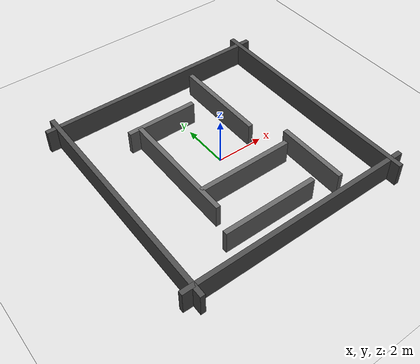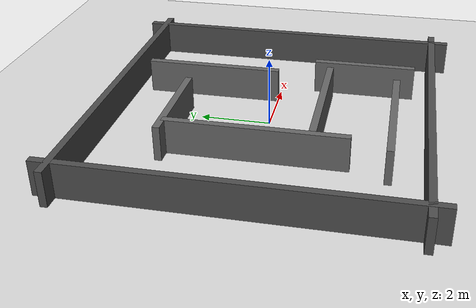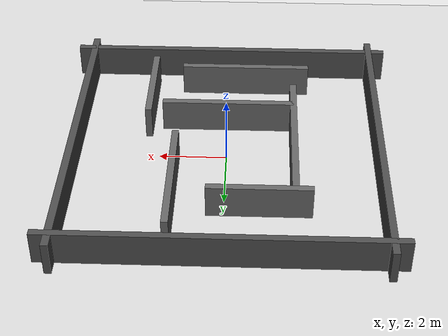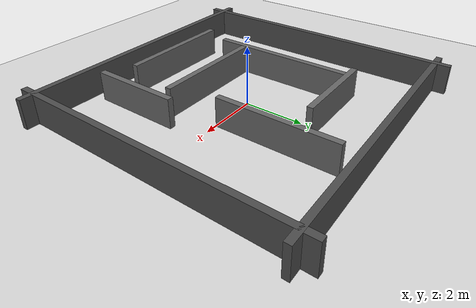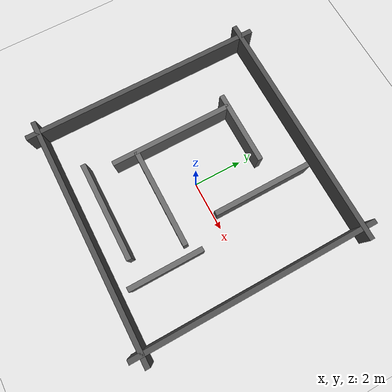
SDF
<?xml version="1.0" ?>
<sdf version="1.9">
  <world name="maze_world">
    <physics name="1ms" default="true" type="ode">
      <max_step_size>0.001</max_step_size>
      <real_time_factor>1.0</real_time_factor>
      <real_time_update_rate>1000.0</real_time_update_rate>
    </physics>

    <plugin filename="gz-sim-physics-system" name="gz::sim::systems::Physics">
    </plugin>
    <plugin filename="gz-sim-user-commands-system" name="gz::sim::systems::UserCommands">
    </plugin>
    <plugin filename="gz-sim-scene-broadcaster-system" name="gz::sim::systems::SceneBroadcaster">
    </plugin>

    <scene>
      <ambient>0.4 0.4 0.4 1.0</ambient>
      <background>0.7 0.7 0.8 1.0</background>
      <shadows>true</shadows>
    </scene>

    <light type="directional" name="sun">
      <cast_shadows>true</cast_shadows>
      <pose>0 0 10 0 0 0</pose>
      <diffuse>0.8 0.8 0.8 1</diffuse>
      <specular>0.2 0.2 0.2 1</specular>
      <direction>-0.5 0.1 -0.9</direction>
    </light>

    <model name="ground_plane">
      <static>true</static>
      <link name="link">
        <collision name="collision">
          <geometry>
            <plane>
              <normal>0 0 1</normal>
              <size>50 50</size>
            </plane>
          </geometry>
        </collision>
        <visual name="visual">
          <geometry>
            <plane>
              <normal>0 0 1</normal>
              <size>50 50</size>
            </plane>
          </geometry>
          <material>
            <ambient>0.85 0.85 0.85 1</ambient>
            <diffuse>0.85 0.85 0.85 1</diffuse>
          </material>
        </visual>
      </link>
    </model>

    <model name="maze_walls">
      <static>true</static>

      <link name="wall_outer_1">
        <pose>0 -4.5 0.5 0 0 0</pose>
        <collision name="collision"><geometry><box><size>10 0.2 1.0</size></box></geometry></collision>
        <visual name="visual"><geometry><box><size>10 0.2 1.0</size></box></geometry><material><ambient>0.3 0.3 0.3 1</ambient><diffuse>0.3 0.3 0.3 1</diffuse></material></visual>
      </link>
      <link name="wall_outer_2">
        <pose>0 4.5 0.5 0 0 0</pose>
        <collision name="collision"><geometry><box><size>10 0.2 1.0</size></box></geometry></collision>
        <visual name="visual"><geometry><box><size>10 0.2 1.0</size></box></geometry><material><ambient>0.3 0.3 0.3 1</ambient><diffuse>0.3 0.3 0.3 1</diffuse></material></visual>
      </link>
      <link name="wall_outer_3">
        <pose>-4.5 0 0.5 0 0 0</pose>
        <collision name="collision"><geometry><box><size>0.2 10 1.0</size></box></geometry></collision>
        <visual name="visual"><geometry><box><size>0.2 10 1.0</size></box></geometry><material><ambient>0.3 0.3 0.3 1</ambient><diffuse>0.3 0.3 0.3 1</diffuse></material></visual>
      </link>
      <link name="wall_outer_4">
        <pose>4.5 0 0.5 0 0 0</pose>
        <collision name="collision"><geometry><box><size>0.2 10 1.0</size></box></geometry></collision>
        <visual name="visual"><geometry><box><size>0.2 10 1.0</size></box></geometry><material><ambient>0.3 0.3 0.3 1</ambient><diffuse>0.3 0.3 0.3 1</diffuse></material></visual>
      </link>
      <link name="wall_1">
        <pose>-2.0 0.0 0.5 0 0 0</pose>
        <collision name="collision"><geometry><box><size>0.2 5.0 1.0</size></box></geometry></collision>
        <visual name="visual"><geometry><box><size>0.2 5.0 1.0</size></box></geometry><material><ambient>0.4 0.4 0.4 1</ambient><diffuse>0.4 0.4 0.4 1</diffuse></material></visual>
      </link>
      <link name="wall_2">
        <pose>0.0 -1.5 0.5 0 0 0</pose>
        <collision name="collision"><geometry><box><size>4.0 0.2 1.0</size></box></geometry></collision>
        <visual name="visual"><geometry><box><size>4.0 0.2 1.0</size></box></geometry><material><ambient>0.4 0.4 0.4 1</ambient><diffuse>0.4 0.4 0.4 1</diffuse></material></visual>
      </link>
      <link name="wall_3">
        <pose>1.5 2.0 0.5 0 0 0</pose>
        <collision name="collision"><geometry><box><size>0.2 4.0 1.0</size></box></geometry></collision>
        <visual name="visual"><geometry><box><size>0.2 4.0 1.0</size></box></geometry><material><ambient>0.4 0.4 0.4 1</ambient><diffuse>0.4 0.4 0.4 1</diffuse></material></visual>
      </link>
      <link name="wall_4">
        <pose>-1.0 2.5 0.5 0 0 0</pose>
        <collision name="collision"><geometry><box><size>3.0 0.2 1.0</size></box></geometry></collision>
        <visual name="visual"><geometry><box><size>3.0 0.2 1.0</size></box></geometry><material><ambient>0.4 0.4 0.4 1</ambient><diffuse>0.4 0.4 0.4 1</diffuse></material></visual>
      </link>
      <link name="wall_5">
        <pose>2.4 -2.5 0.5 0 0 0</pose>
        <collision name="collision"><geometry><box><size>0.2 3.0 1.0</size></box></geometry></collision>
        <visual name="visual"><geometry><box><size>0.2 3.0 1.0</size></box></geometry><material><ambient>0.4 0.4 0.4 1</ambient><diffuse>0.4 0.4 0.4 1</diffuse></material></visual>
      </link>
      <link name="wall_6">
        <pose>-0.5 -3.5 0.5 0 0 0</pose>
        <collision name="collision"><geometry><box><size>4.0 0.2 1.0</size></box></geometry></collision>
        <visual name="visual"><geometry><box><size>4.0 0.2 1.0</size></box></geometry><material><ambient>0.4 0.4 0.4 1</ambient><diffuse>0.4 0.4 0.4 1</diffuse></material></visual>
      </link>
    </model>
  </world>
</sdf>
